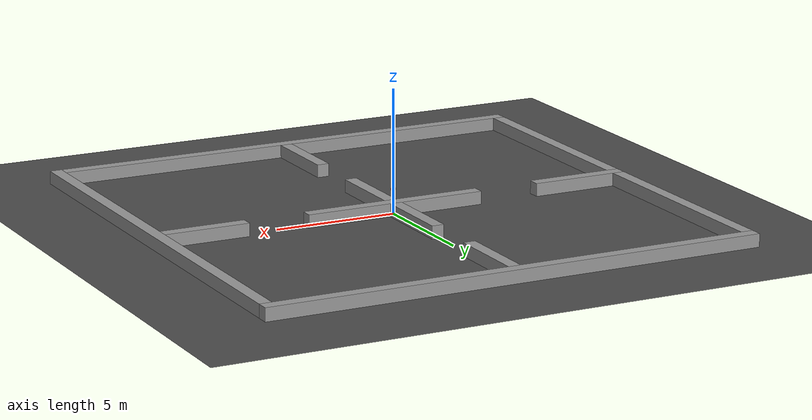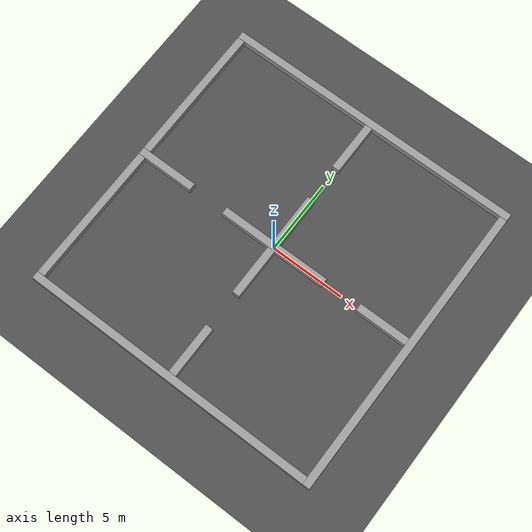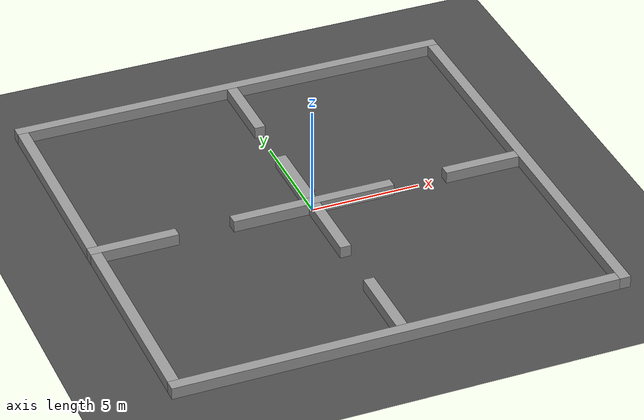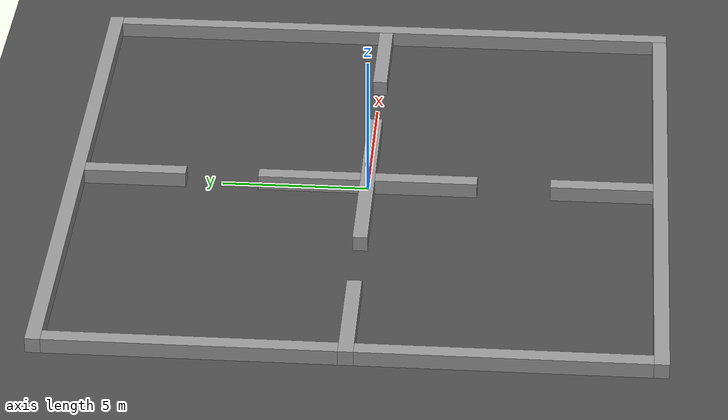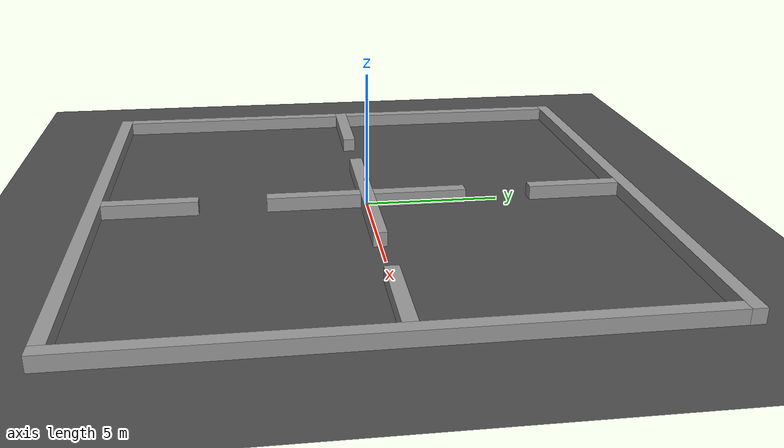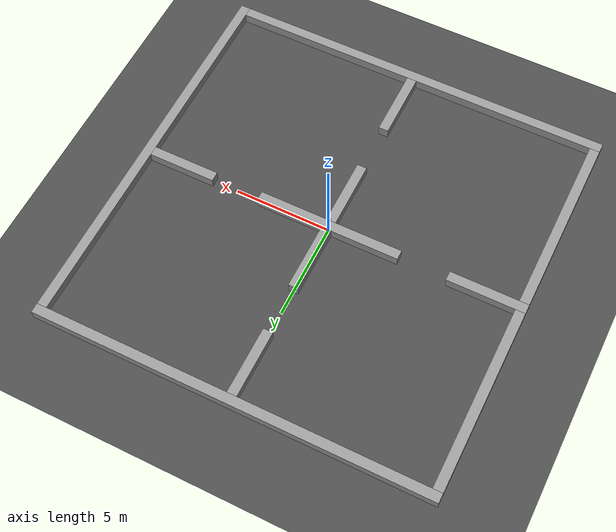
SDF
<sdf version="1.7">
 <world name="default">
  <plugin name="gazebo_ros_state" filename="libgazebo_ros_state.so"/>
  <model name="ground_plane">
   <static>1</static>
   <link name="link">
    <collision name="collision">
     <geometry><plane><normal>0 0 1</normal><size>100 100</size></plane></geometry>
    </collision>
    <visual name="visual">
     <cast_shadows>0</cast_shadows>
     <geometry><plane><normal>0 0 1</normal><size>100 100</size></plane></geometry>
     <material>
      <script><uri>file://media/materials/scripts/gazebo.material</uri><name>Gazebo/DarkGray</name></script>
     </material>
    </visual>
   </link>
  </model>
  <light name="sun" type="directional">
   <pose>0 0 3.5 0 -0 0</pose>
   <diffuse>0.25 0.25 0.25 1</diffuse>
   <direction>0 0 -1</direction>
   <attenuation><range>10</range></attenuation>
   <spot><inner_angle>0</inner_angle><outer_angle>0</outer_angle><falloff>0</falloff></spot>
  </light>
  <light name="user_point_light_0" type="point">
   <pose>0 0 3 0 -0 0</pose>
   <attenuation><linear>0.1</linear><range>10</range></attenuation>
   <cast_shadows>0</cast_shadows>
   <direction>0 0 -1</direction>
   <spot><inner_angle>0</inner_angle><outer_angle>0</outer_angle><falloff>0</falloff></spot>
  </light>
  <gravity>0 0 -9.8</gravity>
  <magnetic_field>6e-06 2.3e-05 -4.2e-05</magnetic_field>
  <atmosphere type="adiabatic"/>
  <physics type="ode">
   <max_step_size>0.001</max_step_size>
   <real_time_factor>1</real_time_factor>
   <real_time_update_rate>1000</real_time_update_rate>
  </physics>
  <scene><ambient>1 1 1 1</ambient><background>0.7 0.7 0.7 1</background><shadows>1</shadows></scene>
  <audio><device>default</device></audio>
  <spherical_coordinates>
   <surface_model>EARTH_WGS84</surface_model>
   <latitude_deg>0</latitude_deg>
   <longitude_deg>0</longitude_deg>
   <elevation>0</elevation>
   <heading_deg>0</heading_deg>
  </spherical_coordinates>
  <model name="vertical_wall_0">
   <pose>-0.0 10.0 0 0 0 0</pose>
   <link name="wall">
    <collision name="wall_collision"><geometry><box><size>20.5 0.5 1.0</size></box></geometry></collision>
    <visual name="wall_Visual">
     <geometry><box><size>20.5 0.5 1.0</size></box></geometry>
     <material>
      <script><uri>file://media/materials/scripts/gazebo.material</uri><name>Gazebo/Grey</name></script>
      <ambient>0.298039 0.298039 0.298039 1</ambient>
     </material>
     <meta><layer>0</layer></meta>
    </visual>
   </link>
   <static>1</static>
  </model>
  <model name="vertical_wall_1">
   <pose>8.0 -0.0 0 0 0 0</pose>
   <link name="wall">
    <collision name="wall_collision"><geometry><box><size>3.5 0.5 1.0</size></box></geometry></collision>
    <visual name="wall_Visual">
     <geometry><box><size>3.5 0.5 1.0</size></box></geometry>
     <material>
      <script><uri>file://media/materials/scripts/gazebo.material</uri><name>Gazebo/Grey</name></script>
      <ambient>0.298039 0.298039 0.298039 1</ambient>
     </material>
     <meta><layer>0</layer></meta>
    </visual>
   </link>
   <static>1</static>
  </model>
  <model name="vertical_wall_2">
   <pose>-0.25 -10.0 0 0 0 0</pose>
   <link name="wall">
    <collision name="wall_collision"><geometry><box><size>20.0 0.5 1.0</size></box></geometry></collision>
    <visual name="wall_Visual">
     <geometry><box><size>20.0 0.5 1.0</size></box></geometry>
     <material>
      <script><uri>file://media/materials/scripts/gazebo.material</uri><name>Gazebo/Grey</name></script>
      <ambient>0.298039 0.298039 0.298039 1</ambient>
     </material>
     <meta><layer>0</layer></meta>
    </visual>
   </link>
   <static>1</static>
  </model>
  <model name="vertical_wall_3">
   <link name="wall">
    <collision name="wall_collision"><geometry><box><size>7.5 0.5 1.0</size></box></geometry></collision>
    <visual name="wall_Visual">
     <geometry><box><size>7.5 0.5 1.0</size></box></geometry>
     <material>
      <script><uri>file://media/materials/scripts/gazebo.material</uri><name>Gazebo/Grey</name></script>
      <ambient>0.298039 0.298039 0.298039 1</ambient>
     </material>
     <meta><layer>0</layer></meta>
    </visual>
   </link>
   <static>1</static>
  </model>
  <model name="vertical_wall_4">
   <pose>-8.25 -0.0 0 0 0 0</pose>
   <link name="wall">
    <collision name="wall_collision"><geometry><box><size>4.0 0.5 1.0</size></box></geometry></collision>
    <visual name="wall_Visual">
     <geometry><box><size>4.0 0.5 1.0</size></box></geometry>
     <material>
      <script><uri>file://media/materials/scripts/gazebo.material</uri><name>Gazebo/Grey</name></script>
      <ambient>0.298039 0.298039 0.298039 1</ambient>
     </material>
     <meta><layer>0</layer></meta>
    </visual>
   </link>
   <static>1</static>
  </model>
  <model name="horizontal_wall_0">
   <pose>10.0 -0.25 0 0 0 0</pose>
   <link name="wall">
    <collision name="wall_collision"><geometry><box><size>0.5 20.0 1.0</size></box></geometry></collision>
    <visual name="wall_Visual">
     <geometry><box><size>0.5 20.0 1.0</size></box></geometry>
     <material>
      <script><uri>file://media/materials/scripts/gazebo.material</uri><name>Gazebo/Grey</name></script>
      <ambient>0.298039 0.298039 0.298039 1</ambient>
     </material>
     <meta><layer>0</layer></meta>
    </visual>
   </link>
   <static>1</static>
  </model>
  <model name="horizontal_wall_1">
   <pose>-0.0 8.0 0 0 0 0</pose>
   <link name="wall">
    <collision name="wall_collision"><geometry><box><size>0.5 3.5 1.0</size></box></geometry></collision>
    <visual name="wall_Visual">
     <geometry><box><size>0.5 3.5 1.0</size></box></geometry>
     <material>
      <script><uri>file://media/materials/scripts/gazebo.material</uri><name>Gazebo/Grey</name></script>
      <ambient>0.298039 0.298039 0.298039 1</ambient>
     </material>
     <meta><layer>0</layer></meta>
    </visual>
   </link>
   <static>1</static>
  </model>
  <model name="horizontal_wall_2">
   <pose>-0.0 2.0 0 0 0 0</pose>
   <link name="wall">
    <collision name="wall_collision"><geometry><box><size>0.5 3.5 1.0</size></box></geometry></collision>
    <visual name="wall_Visual">
     <geometry><box><size>0.5 3.5 1.0</size></box></geometry>
     <material>
      <script><uri>file://media/materials/scripts/gazebo.material</uri><name>Gazebo/Grey</name></script>
      <ambient>0.298039 0.298039 0.298039 1</ambient>
     </material>
     <meta><layer>0</layer></meta>
    </visual>
   </link>
   <static>1</static>
  </model>
  <model name="horizontal_wall_3">
   <pose>-0.0 -2.0 0 0 0 0</pose>
   <link name="wall">
    <collision name="wall_collision"><geometry><box><size>0.5 3.5 1.0</size></box></geometry></collision>
    <visual name="wall_Visual">
     <geometry><box><size>0.5 3.5 1.0</size></box></geometry>
     <material>
      <script><uri>file://media/materials/scripts/gazebo.material</uri><name>Gazebo/Grey</name></script>
      <ambient>0.298039 0.298039 0.298039 1</ambient>
     </material>
     <meta><layer>0</layer></meta>
    </visual>
   </link>
   <static>1</static>
  </model>
  <model name="horizontal_wall_4">
   <pose>-0.0 -8.0 0 0 0 0</pose>
   <link name="wall">
    <collision name="wall_collision"><geometry><box><size>0.5 3.5 1.0</size></box></geometry></collision>
    <visual name="wall_Visual">
     <geometry><box><size>0.5 3.5 1.0</size></box></geometry>
     <material>
      <script><uri>file://media/materials/scripts/gazebo.material</uri><name>Gazebo/Grey</name></script>
      <ambient>0.298039 0.298039 0.298039 1</ambient>
     </material>
     <meta><layer>0</layer></meta>
    </visual>
   </link>
   <static>1</static>
  </model>
  <model name="horizontal_wall_5">
   <pose>-10.0 5.0 0 0 0 0</pose>
   <link name="wall">
    <collision name="wall_collision"><geometry><box><size>0.5 9.5 1.0</size></box></geometry></collision>
    <visual name="wall_Visual">
     <geometry><box><size>0.5 9.5 1.0</size></box></geometry>
     <material>
      <script><uri>file://media/materials/scripts/gazebo.material</uri><name>Gazebo/Grey</name></script>
      <ambient>0.298039 0.298039 0.298039 1</ambient>
     </material>
     <meta><layer>0</layer></meta>
    </visual>
   </link>
   <static>1</static>
  </model>
  <model name="horizontal_wall_6">
   <pose>-10.0 -5.0 0 0 0 0</pose>
   <link name="wall">
    <collision name="wall_collision"><geometry><box><size>0.5 9.5 1.0</size></box></geometry></collision>
    <visual name="wall_Visual">
     <geometry><box><size>0.5 9.5 1.0</size></box></geometry>
     <material>
      <script><uri>file://media/materials/scripts/gazebo.material</uri><name>Gazebo/Grey</name></script>
      <ambient>0.298039 0.298039 0.298039 1</ambient>
     </material>
     <meta><layer>0</layer></meta>
    </visual>
   </link>
   <static>1</static>
  </model>
  <model name="goal_marker">
   <pose>0 0 1 0 0 0</pose>
   <link name="link">
    <gravity>0</gravity>
    <visual name="visual">
     <geometry><sphere><radius>0.1</radius></sphere></geometry>
     <material><ambient>1 0 0 1</ambient></material>
    </visual>
   </link>
  </model>
 </world>
</sdf>
